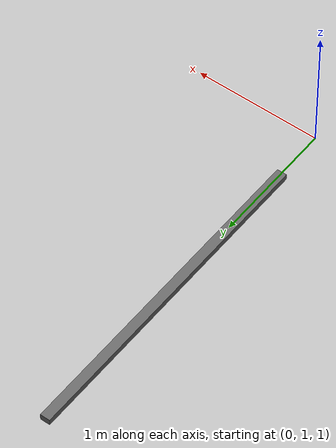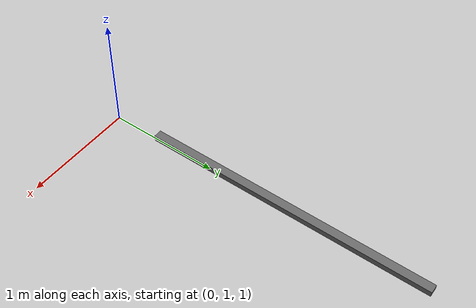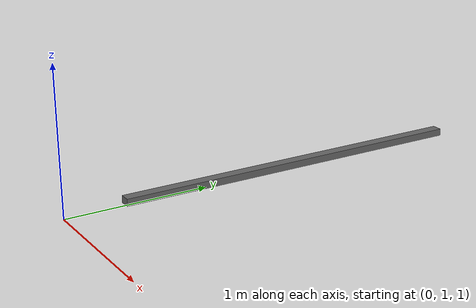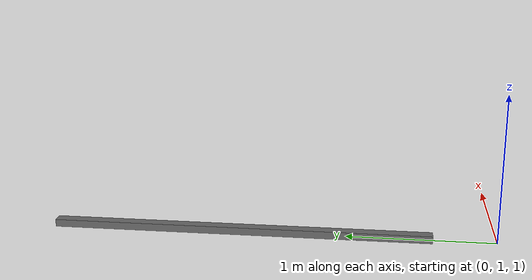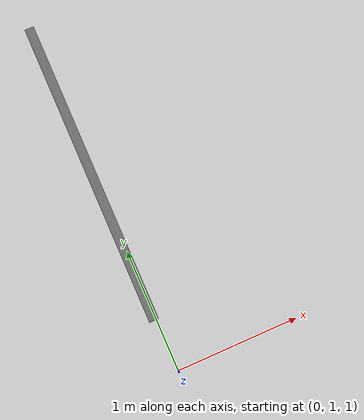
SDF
<?xml version="1.0" ?>
<!-- tmp sdf file generated from LISDF -->
<sdf version="1.9">
  <world name="tmp_world">

<model name="counter_back#1">
  <static>True</static>
  <pose>-0.01899999938905239 2.7119998931884766 1.024999976158142 0.0 -0.0 0.0</pose>
  <link name="box">

    <inertial>
      <mass>0</mass>
      <pose>0.0 0.0 0.0 0.0 -0.0 0.0</pose>
      <inertia>
        <ixx>0</ixx>
        <ixy>0</ixy>
        <ixz>0</ixz>
        <iyy>0</iyy>
        <iyz>0</iyz>
        <izz>0</izz>
      </inertia>
    </inertial>
    <collision name="box_collision">>
      <pose>0.0 0.0 0.0 0.0 -0.0 0.0</pose>
      <geometry>
        <box>
          <size>0.07699999958276749 2.5799999237060547 0.05000000074505806</size>
        </box>
      </geometry>

    </collision>
    <visual name="box_visual">
      <pose>0.0 0.0 0.0 0.0 -0.0 0.0</pose>
      <geometry>
        <box>
          <size>0.07699999958276749 2.5799999237060547 0.05000000074505806</size>
        </box>
      </geometry>
      <material>
        <ambient>1.0 1.0 1.0 1.0</ambient>
        <diffuse>0.4000000059604645 0.4000000059604645 0.4000000059604645 1.0</diffuse>
        <specular>0.0 0.0 0.0 1.0</specular>
        <emissive>0.0 0.0 0.0 1.0</emissive>
      </material>
      <cast_shadows>True</cast_shadows>
    </visual>
    <self_collide>True</self_collide>
  </link>

</model>

  </world>
</sdf>
